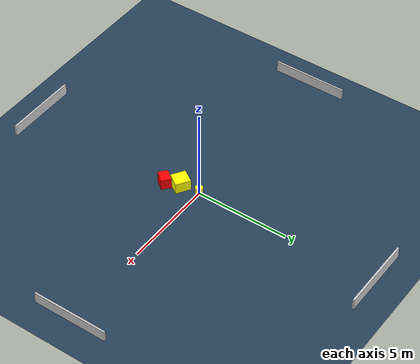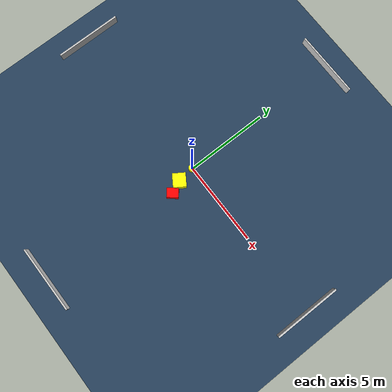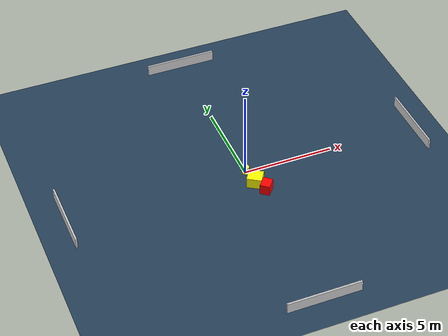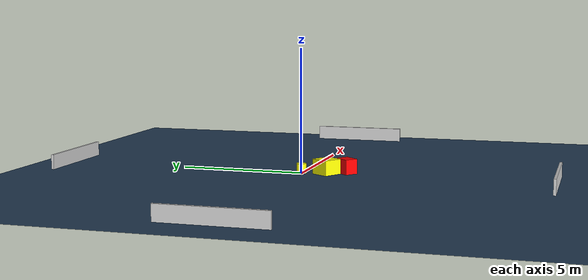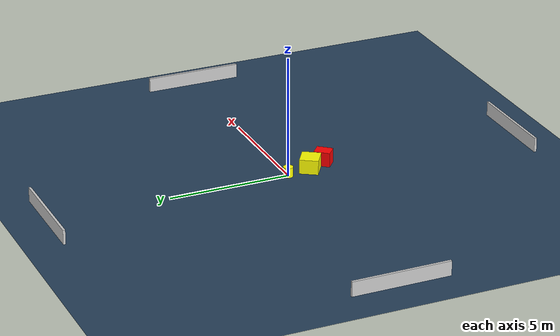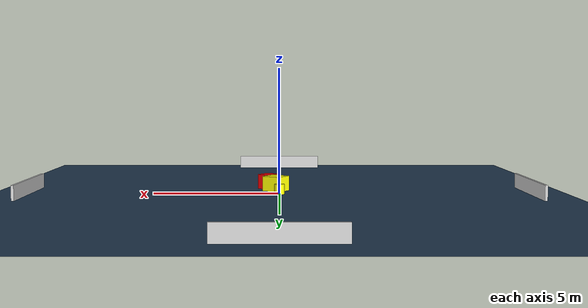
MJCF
<?xml version="1.0" ?>
<mujoco model="generated_environment">
  <option timestep="0.01" integrator="RK4" cone="elliptic"/>
  <default>
    <geom density="1"/>
  </default>
  <asset>
    <texture builtin="gradient" height="3072" name="skybox" rgb1="0.3 0.5 0.7" rgb2="0 0 0" type="skybox" width="512"/>
    <texture builtin="checker" height="300" name="groundplane" rgb1="0.2 0.3 0.4" rgb2="0.1 0.2 0.3" type="2d" width="300"/>
    <material name="groundplane" reflectance="0.2" texrepeat="5 5" texture="groundplane"/>
  </asset>
  <worldbody>
    <light dir="0 0 -1" directional="true" pos="0 0 1.5"/>
    <geom condim="3" friction="0.5 0.005 0.001" material="groundplane" name="floor" pos="0 0 0" size="0 0 0.05" type="plane"/>
    <body name="walls">
      <geom name="wall_1" condim="4" pos="-10.0 0.0 0.3" rgba="0.800000011920929 0.800000011920929 0.800000011920929 1.0" size="0.05 2.0 0.3" type="box"/>
      <geom name="wall_2" condim="4" pos="10.0 0.0 0.3" rgba="0.800000011920929 0.800000011920929 0.800000011920929 1.0" size="0.05 2.0 0.3" type="box"/>
      <geom name="wall_3" condim="4" pos="0.0 -10.0 0.3" rgba="0.800000011920929 0.800000011920929 0.800000011920929 1.0" size="2.0 0.05 0.3" type="box"/>
      <geom name="wall_4" condim="4" pos="0.0 10.0 0.3" rgba="0.800000011920929 0.800000011920929 0.800000011920929 1.0" size="2.0 0.05 0.3" type="box"/>
    </body>
    <body name="robot">
      <joint name="joint_x" type="slide" pos="0 0 0" axis="1 0 0"/>
      <joint name="joint_y" type="slide" pos="0 0 0" axis="0 1 0"/>
      <geom name="robot" type="cylinder" pos="0.0 0.0 0.2" size="0.2 0.2 0.0" mass="5.0" friction="1.0 0.005 0.0001" condim="4" rgba="1.0 1.0 0.0 1.0"/>
    </body>
    <body name="obstacle_1_movable">
      <geom name="obstacle_1_movable" condim="4" pos="0.13973391488817122 -1.014416949433081 0.3" euler="0 0 327.1404025892372" friction="0.0 0.005 0.001" rgba="1.0 1.0 0.0 1.0" size="0.40573910740434227 0.3828981976564989 0.3" type="box" mass="0.1"/>
      <joint type="free"/>
    </body>
    <body name="obstacle_2_static">
      <geom name="obstacle_2_static" condim="4" pos="0.473706923737196 -1.7444593171767144 0.3" euler="0 0 320.12011448811506" friction="0.0 0.005 0.001" rgba="1.0 0.0 0.0 1.0" size="0.27018216393444905 0.3325773638891364 0.3" type="box"/>
    </body>
  </worldbody>
  <actuator>
    <motor name="actuator_x" joint="joint_x" gear="1" ctrlrange="-1 1"/>
    <motor name="actuator_y" joint="joint_y" gear="1" ctrlrange="-1 1"/>
  </actuator>
</mujoco>
